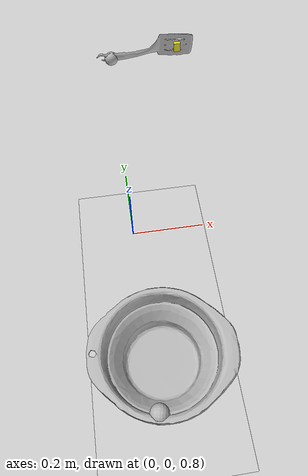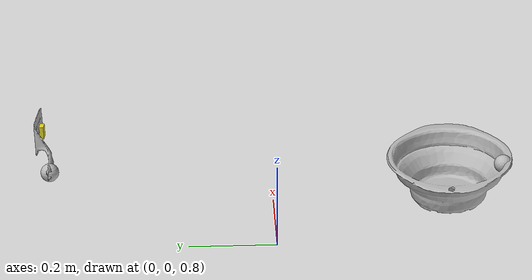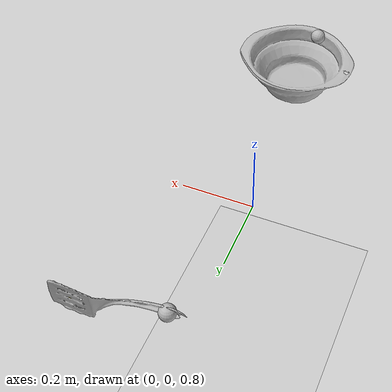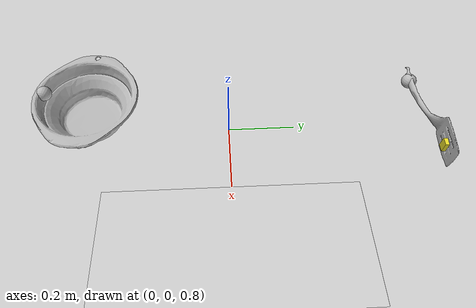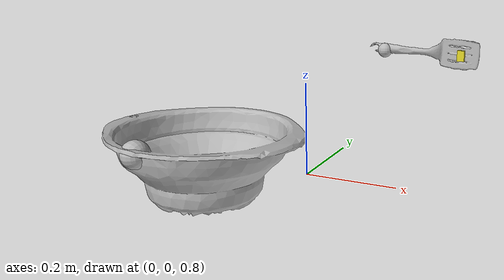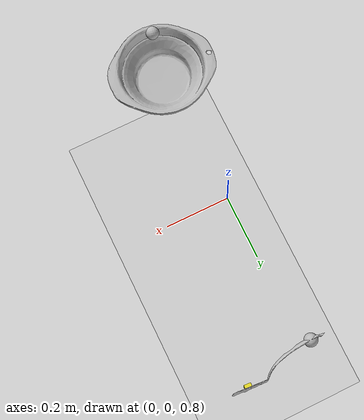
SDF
<sdf version="1.6">
    <world name="scraping">

        <physics type="ode">
            <max_step_size>0.001</max_step_size>
            <real_time_factor>1</real_time_factor>
            <real_time_update_rate>1000</real_time_update_rate>
            <bullet>
                <solver>
                    <iters>70</iters>
                </solver>
            </bullet>
            <ode>
                <solver>
                    <iters>70</iters>
                </solver>
            </ode>
        </physics>

        <include>
            <uri>model://sun</uri>
        </include>

        <include>
            <uri>model://ground_plane</uri>
        </include>

        <include>
            <uri>model://b_spatula</uri>
            <pose>0.140489 0.527566 0.997957 1.571605 -0.058101 -2.939758</pose>
        </include>

        <include>
            <uri>model://butter_box</uri>
            <pose>0.208221 0.534198 0.991390 1.634659 1.569999 -0.001148</pose>
            <plugin name="stick" filename="libStickPlugin.so">
              <parentLinkName>link</parentLinkName>
              <childLinkName>b_spatula::link</childLinkName>
              <force>5</force>
            </plugin>
        </include>

        <include>
            <uri>model://b_big_bowl</uri>
            <pose>0.024164 -0.383989 0.959287 -0.017186 -0.000884 -0.101566</pose>
        </include>

        <!-- Left Gripper -->
        <include>
            <uri>model://gripper</uri>
            <name>left_ee</name>
            <pose>0 0.5 1 0 0 0</pose>

            <plugin name="l_force_controller" filename="libvelocity_controller_plugin.so">
              <linkName>link</linkName>
              <topicName>set_l_ee_twist</topicName>
              <gains>
                <linear>
                  <P>100.0</P>
                  <I>0.0</I>
                  <D>25.0</D>
                </linear>
                <angular>
                  <P>100.0</P>
                  <I>0.0</I>
                  <D>25.0</D>
                </angular>
              </gains>
            </plugin>

            <plugin name="l_grip" filename="libGripPlugin.so">
              <parentLinkName>link</parentLinkName>
              <childLinkName>b_spatula::link</childLinkName>
              <relativePose>0.14 0.028 -0.002 -1.57 3.20 0.20</relativePose>
            </plugin>

            <plugin name="l_tf_broadcaster" filename="libtf_broadcaster_plugin.so">
              <linkName>link</linkName>
              <frameName>l_gripper_tool_frame</frameName>
            </plugin>
        </include>

        <!-- Right Gripper -->
        <include>
            <uri>model://gripper</uri>
            <name>right_ee</name>
            <pose>0 -0.5 1 1.547368 1.402341 1.343703</pose>

            <plugin name="r_force_controller" filename="libvelocity_controller_plugin.so">
              <linkName>link</linkName>
              <topicName>set_r_gripper_twist</topicName>
              <gains>
                <linear>
                  <P>100.0</P>
                  <I>0.0</I>
                  <D>25.0</D>
                </linear>
                <angular>
                  <P>100.0</P>
                  <I>0.0</I>
                  <D>25.0</D>
                </angular>
              </gains>
            </plugin>

            <plugin name="r_grip" filename="libGripPlugin.so">
              <parentLinkName>link</parentLinkName>
              <childLinkName>b_big_bowl::link</childLinkName>
              <relativePose>0.06 0.11 0 -1.57 -1.35 1.3</relativePose>
            </plugin>

            <plugin name="r_tf_broadcaster" filename="libtf_broadcaster_plugin.so">
              <linkName>link</linkName>
              <frameName>r_gripper_tool_frame</frameName>
            </plugin>
        </include>

        <gui>
            <camera name='user_camera'>
                <pose>1.700789 1.175709 1.670612 0 0.375643 -2.675000</pose>
                <view_controller>orbit</view_controller>
            </camera>
        </gui>

    </world>
</sdf>

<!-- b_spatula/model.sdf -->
<sdf version='1.6'>
	<model name='b_spatula'>
		<static>false</static>
		<pose>0 0 0 0 0 0</pose>

		<link name='link'>
			<inertial>
			<mass>0.11</mass>
			<pose>0.00088072 -6.5132e-05 0.00086388 0 0 0</pose>
				<inertia>
					<ixx>8.1404e-07</ixx>
					<ixy>0</ixy>
					<ixz>0</ixz>
					<iyy>1.1521e-06</iyy>
					<iyz>0</iyz>
					<izz>5.3661e-07</izz>
				</inertia>
			</inertial>

			<sensor name="tool_contact_sensor" type="contact">
				<always_on>true</always_on>
				<update_rate>30.0</update_rate>
				<contact>
					<collision>collision</collision>
				</contact>
				<plugin name="tool_bumper" filename="libgazebo_ros_bumper.so">
					<bumperTopicName>tool_contact_sensor_state</bumperTopicName>
					<frameName>world</frameName>
				</plugin>
			</sensor>

			<collision name='collision'>
				<geometry>
					<mesh>
						<uri>model://b_spatula/b_spatula.dae</uri>
					</mesh>
				</geometry>
				<surface>
					<friction>
						<ode>
							<mu>0.2</mu>
							<mu2>0.2</mu2>
						</ode>
					</friction>
				</surface>
			</collision>
			<visual name='visual'>
				<geometry>
					<mesh>
						<uri>model://b_spatula/b_spatula.dae</uri>
					</mesh>
				</geometry>
			</visual>
		</link>
	</model>
</sdf>

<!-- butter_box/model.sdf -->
<sdf version='1.6'>
    <model name='butter_box'>
        <static>false</static>
        <pose>0 0 0 0 0 0</pose>
        <link name='link'>
            <pose>0 0 0 0 0 0</pose>
            <inertial>
                <mass>0.001</mass>
                <pose>0 0 0 0 0 0</pose>
                <inertia>
                    <ixx>0.00000004167</ixx>
                    <iyy>0.00000008333</iyy>
                    <izz>0.00000010833</izz>
                    <ixy>0</ixy>
                    <ixz>0</ixz>
                    <iyz>0</iyz>
                </inertia>
            </inertial>
            <collision name='collision'>
                <geometry>
                    <box>
                        <size>0.03 0.02 0.01</size>
                    </box>
                </geometry>
                <surface>
                    <friction>
                        <ode>
                            <mu>0.2</mu>
                            <mu2>0.2</mu2>
                        </ode>
                    </friction>
                </surface>
            </collision>
            <visual name='visual'>
                <geometry>
                    <box>
                        <size>0.03 0.02 0.01</size>
                    </box>
                </geometry>
                <material>
                    <script>
                        <name>Gazebo/Yellow</name>
                        <uri>file://media/materials/scripts/gazebo.material</uri>
                    </script>
                </material>
            </visual>
        </link>
    </model>
</sdf>

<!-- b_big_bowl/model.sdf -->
<sdf version='1.6'>
	<model name='b_big_bowl'>
		<static>false</static>
		<pose>0 0 0 0 0 0</pose>

		<link name='link'>
			<inertial>
			<mass>0.35</mass>
			<pose>-0.0022966 -0.0039142 0.0041527 0 0 0</pose>
				<inertia>
					<ixx>0.0009479167</ixx>
					<iyy>0.0009479167</iyy>
					<izz>0.00175</izz>
				</inertia>
			</inertial>
			<collision name='collision'>
				<geometry>
					<mesh>
						<uri>model://b_big_bowl/b_big_bowl.dae</uri>
					</mesh>
				</geometry>
				<surface>
					<friction>
						<ode>
							<mu>0.2</mu>
							<mu2>0.2</mu2>
						</ode>
					</friction>
				</surface>
			</collision>
			<visual name='visual'>
				<geometry>
					<mesh>
						<uri>model://b_big_bowl/b_big_bowl.dae</uri>
					</mesh>
				</geometry>
			</visual>
		</link>
	</model>
</sdf>

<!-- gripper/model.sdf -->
<sdf version='1.6'>
    <model name='gripper'>
        <static>false</static>
        <allow_auto_disable>false</allow_auto_disable>

        <pose>0 0 0 0 0 0</pose>

        <link name='link'>
            <pose>0 0 0 0 0 0</pose>

            <gravity>false</gravity>

            <visual name='visual'>
                <geometry>
                    <sphere>
                        <radius>0.02</radius>
                    </sphere>
                </geometry>
            </visual>

        </link>
    </model>
</sdf>
